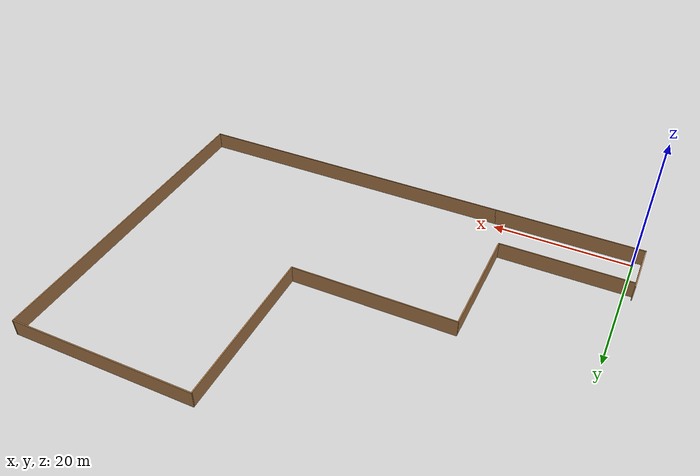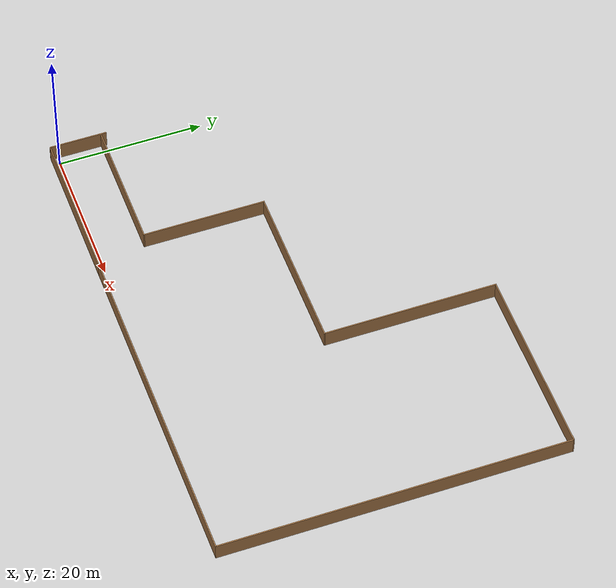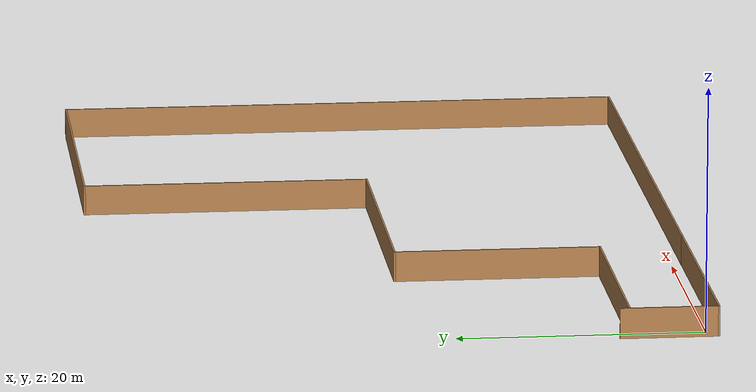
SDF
<sdf version="1.5">
 <world name="default">
  <include><uri>model://sun</uri></include>
  <model name="my_world">
   <pose>33.3084 23.0424 0 0 -0 0</pose>
   <link name="Wall_0">
    <collision name="Wall_0_Collision">
     <geometry><box><size>8 0.15 2.5</size></box></geometry>
     <pose>0 0 1.25 0 -0 0</pose>
    </collision>
    <visual name="Wall_0_Visual">
     <pose>0 0 1.25 0 -0 0</pose>
     <geometry><box><size>8 0.15 2.5</size></box></geometry>
     <material>
      <script><uri>file://media/materials/scripts/gazebo.material</uri><name>Gazebo/Wood</name></script>
      <ambient>1 1 1 1</ambient>
     </material>
     <meta><layer>0</layer></meta>
    </visual>
    <pose>-34.475 -20 0 0 -0 1.5708</pose>
   </link>
   <link name="Wall_10">
    <collision name="Wall_10_Collision">
     <geometry><box><size>23.75 0.15 2.5</size></box></geometry>
     <pose>0 0 1.25 0 -0 0</pose>
    </collision>
    <visual name="Wall_10_Visual">
     <pose>0 0 1.25 0 -0 0</pose>
     <geometry><box><size>23.75 0.15 2.5</size></box></geometry>
     <material>
      <script><uri>file://media/materials/scripts/gazebo.material</uri><name>Gazebo/Wood</name></script>
      <ambient>1 1 1 1</ambient>
     </material>
     <meta><layer>0</layer></meta>
    </visual>
    <pose>-3.925 0.075002 0 0 -0 3.14159</pose>
   </link>
   <link name="Wall_11">
    <collision name="Wall_11_Collision">
     <geometry><box><size>17 0.15 2.5</size></box></geometry>
     <pose>0 0 1.25 0 -0 0</pose>
    </collision>
    <visual name="Wall_11_Visual">
     <pose>0 0 1.25 0 -0 0</pose>
     <geometry><box><size>17 0.15 2.5</size></box></geometry>
     <material>
      <script><uri>file://media/materials/scripts/gazebo.material</uri><name>Gazebo/Wood</name></script>
      <ambient>1 1 1 1</ambient>
     </material>
     <meta><layer>0</layer></meta>
    </visual>
    <pose>-15.725 -8.35 0 0 -0 -1.5708</pose>
   </link>
   <link name="Wall_12">
    <collision name="Wall_12_Collision">
     <geometry><box><size>18.75 0.15 2.5</size></box></geometry>
     <pose>0 0 1.25 0 -0 0</pose>
    </collision>
    <visual name="Wall_12_Visual">
     <pose>0 0 1.25 0 -0 0</pose>
     <geometry><box><size>18.75 0.15 2.5</size></box></geometry>
     <material>
      <script><uri>file://media/materials/scripts/gazebo.material</uri><name>Gazebo/Wood</name></script>
      <ambient>1 1 1 1</ambient>
     </material>
     <meta><layer>0</layer></meta>
    </visual>
    <pose>-25.025 -16.775 0 0 -0 3.14159</pose>
   </link>
   <link name="Wall_2">
    <collision name="Wall_2_Collision">
     <geometry><box><size>21.5 0.15 2.5</size></box></geometry>
     <pose>0 0 1.25 0 -0 0</pose>
    </collision>
    <visual name="Wall_2_Visual">
     <pose>0 0 1.25 0 -0 0</pose>
     <geometry><box><size>21.5 0.15 2.5</size></box></geometry>
     <material>
      <script><uri>file://media/materials/scripts/gazebo.material</uri><name>Gazebo/Wood</name></script>
      <ambient>1 1 1 1</ambient>
     </material>
     <meta><layer>0</layer></meta>
    </visual>
    <pose>-23.8 -23.925 0 0 -0 0</pose>
   </link>
   <link name="Wall_4">
    <collision name="Wall_4_Collision">
     <geometry><box><size>47.75 0.15 2.5</size></box></geometry>
     <pose>0 0 1.25 0 -0 0</pose>
    </collision>
    <visual name="Wall_4_Visual">
     <pose>0 0 1.25 0 -0 0</pose>
     <geometry><box><size>47.75 0.15 2.5</size></box></geometry>
     <material>
      <script><uri>file://media/materials/scripts/gazebo.material</uri><name>Gazebo/Wood</name></script>
      <ambient>1 1 1 1</ambient>
     </material>
     <meta><layer>0</layer></meta>
    </visual>
    <pose>10.675 -23.925 0 0 -0 0</pose>
   </link>
   <link name="Wall_6">
    <collision name="Wall_6_Collision">
     <geometry><box><size>48 0.15 2.5</size></box></geometry>
     <pose>0 0 1.25 0 -0 0</pose>
    </collision>
    <visual name="Wall_6_Visual">
     <pose>0 0 1.25 0 -0 0</pose>
     <geometry><box><size>48 0.15 2.5</size></box></geometry>
     <material>
      <script><uri>file://media/materials/scripts/gazebo.material</uri><name>Gazebo/Wood</name></script>
      <ambient>1 1 1 1</ambient>
     </material>
     <meta><layer>0</layer></meta>
    </visual>
    <pose>34.475 1e-06 0 0 -0 1.5708</pose>
   </link>
   <link name="Wall_8">
    <collision name="Wall_8_Collision">
     <geometry><box><size>26.75 0.15 2.5</size></box></geometry>
     <pose>0 0 1.25 0 -0 0</pose>
    </collision>
    <visual name="Wall_8_Visual">
     <pose>0 0 1.25 0 -0 0</pose>
     <geometry><box><size>26.75 0.15 2.5</size></box></geometry>
     <material>
      <script><uri>file://media/materials/scripts/gazebo.material</uri><name>Gazebo/Wood</name></script>
      <ambient>1 1 1 1</ambient>
     </material>
     <meta><layer>0</layer></meta>
    </visual>
    <pose>21.175 23.925 0 0 -0 3.14159</pose>
   </link>
   <link name="Wall_9">
    <collision name="Wall_9_Collision">
     <geometry><box><size>24 0.15 2.5</size></box></geometry>
     <pose>0 0 1.25 0 -0 0</pose>
    </collision>
    <visual name="Wall_9_Visual">
     <pose>0 0 1.25 0 -0 0</pose>
     <geometry><box><size>24 0.15 2.5</size></box></geometry>
     <material>
      <script><uri>file://media/materials/scripts/gazebo.material</uri><name>Gazebo/Wood</name></script>
      <ambient>1 1 1 1</ambient>
     </material>
     <meta><layer>0</layer></meta>
    </visual>
    <pose>7.875 12 0 0 -0 -1.5708</pose>
   </link>
   <static>1</static>
  </model>
  <scene>
   <ambient>0.8 0.8 0.8 1</ambient>
   <background>0.8 0.9 1 1</background>
   <shadows>false</shadows>
   <grid>false</grid>
   <origin_visual>false</origin_visual>
  </scene>
  <physics name="default_physics" default="0" type="ode">
   <gravity>0 0 -9.8066</gravity>
   <ode>
    <solver>
     <type>quick</type>
     <iters>10</iters>
     <sor>1.3</sor>
     <use_dynamic_moi_rescaling>0</use_dynamic_moi_rescaling>
    </solver>
    <constraints>
     <cfm>0</cfm>
     <erp>0.2</erp>
     <contact_max_correcting_vel>100</contact_max_correcting_vel>
     <contact_surface_layer>0.001</contact_surface_layer>
    </constraints>
   </ode>
   <max_step_size>0.004</max_step_size>
   <real_time_factor>1</real_time_factor>
   <real_time_update_rate>250</real_time_update_rate>
   <magnetic_field>6.0e-6 2.3e-5 -4.2e-5</magnetic_field>
  </physics>
 </world>
</sdf>
